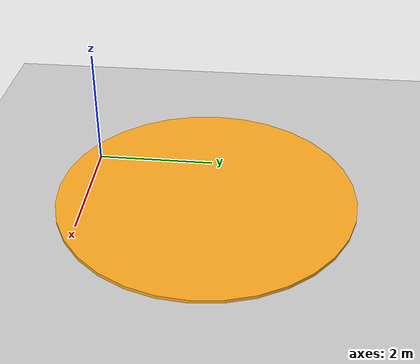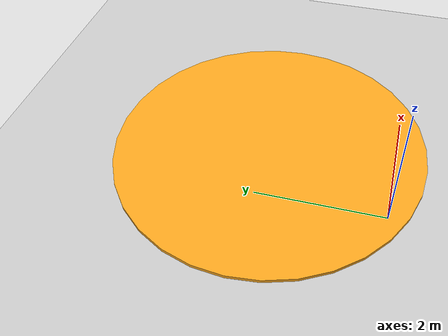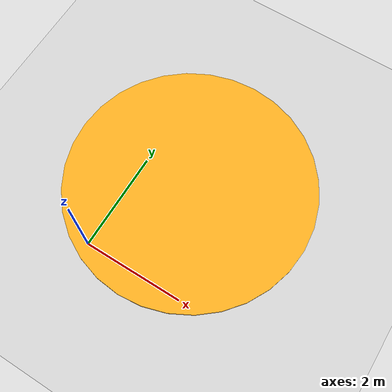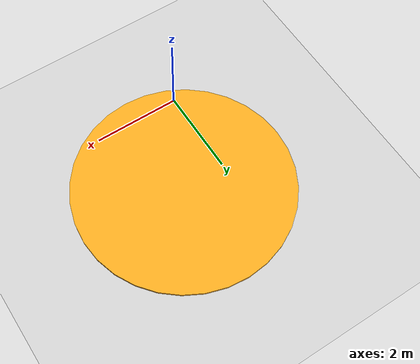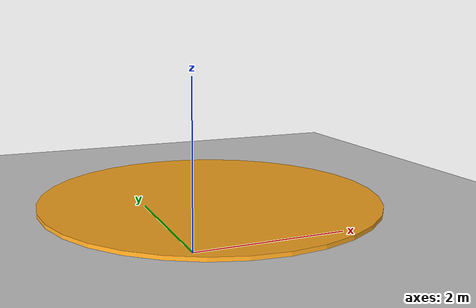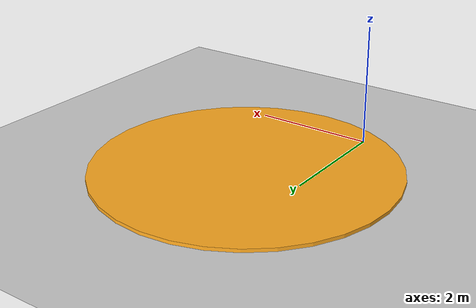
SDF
<?xml version="1.0"?>
<sdf version="1.5">
  <world name="dropzone_obstructed_world">
    <include>
      <uri>model://ground_plane</uri>
    </include>
    <include>
      <uri>model://sun</uri>
    </include>
    <include>
        <uri>model://dropzone_clean</uri>
        <pose>1 2 0 0 0 0</pose>
    </include>

    <!-- Física -->
    <physics name='default_physics' default='0' type='ode'>
      <gravity>0 0 -9.8066</gravity>
      <ode>
        <solver>
          <type>quick</type>
          <iters>10</iters>
          <sor>1.3</sor>
          <use_dynamic_moi_rescaling>0</use_dynamic_moi_rescaling>
        </solver>
        <constraints>
          <cfm>0</cfm>
          <erp>0.2</erp>
          <contact_max_correcting_vel>100</contact_max_correcting_vel>
          <contact_surface_layer>0.001</contact_surface_layer>
        </constraints>
      </ode>
      <max_step_size>0.004</max_step_size>
      <real_time_factor>1</real_time_factor>
      <real_time_update_rate>250</real_time_update_rate>
      <magnetic_field>6.0e-6 2.3e-5 -4.2e-5</magnetic_field>
    </physics>
  </world>
</sdf>

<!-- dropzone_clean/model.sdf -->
<sdf version="1.6">
  <model name="new_H">
    <static>true</static>
    <link name="H_link">
      <visual name="visual_H">
        <cast_shadows>true</cast_shadows>
        <geometry>
          <mesh>
            <uri>model://dropzone_clean/meshes/dropzone.stl</uri>
          </mesh>
        </geometry>
        <material>
          <lighting>1</lighting>
          <script>
              <uri>file://media/materials/scripts/gazebo.material</uri>
              <name>Gazebo/Grey</name>
          </script>
          <shader type='vertex'>
              <normal_map>__default__</normal_map>
          </shader>
          <ambient>0.6 0.3 0 1 1</ambient>
          <diffuse>0.99 0.66 0.12 1</diffuse>
          <specular>0.01 0.01 0.01 1</specular>
          <emissive>0.6 0.3 0 1</emissive>
      </material>
      </visual>
      <collision name="collision_H">
        <geometry>
          <mesh>
            <uri>model://dropzone_clean/meshes/dropzone.stl</uri>
          </mesh>
        </geometry>
      </collision>
    </link>
  </model>
</sdf>
